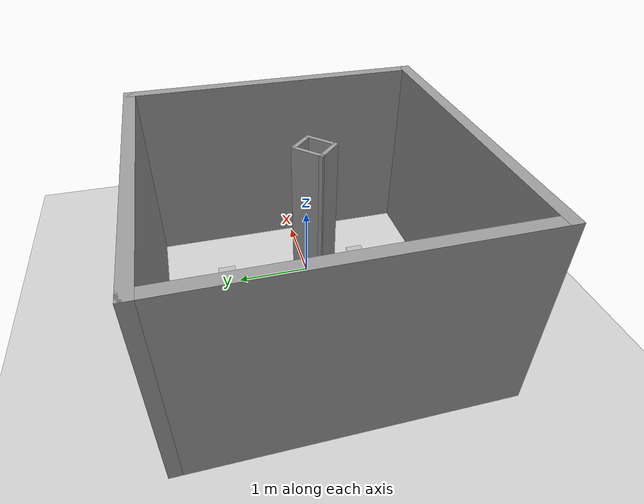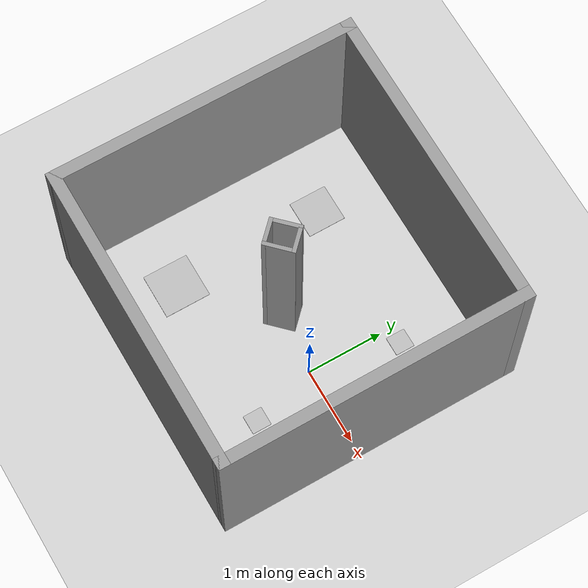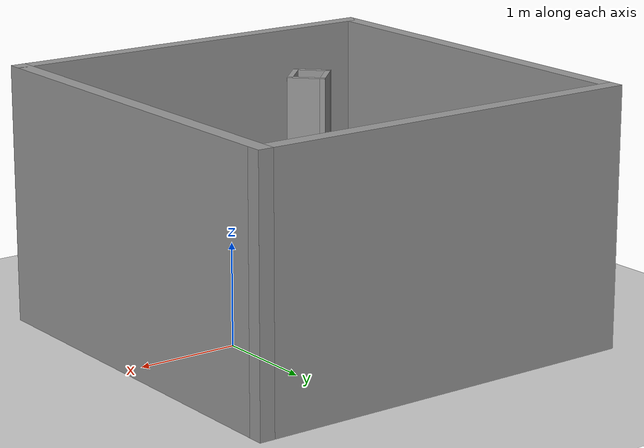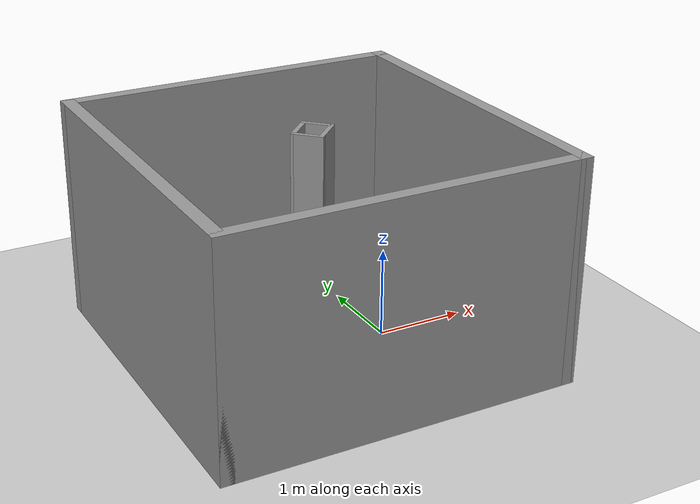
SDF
<sdf version="1.7">
 <world name="default">
  <light name="sun" type="directional">
   <pose>0 0 10 0 -0 0</pose>
   <diffuse>0.8 0.8 0.8 1</diffuse>
   <specular>0.2 0.2 0.2 1</specular>
   <attenuation>
    <range>1000</range>
    <constant>0.9</constant>
    <linear>0.01</linear>
    <quadratic>0.001</quadratic>
   </attenuation>
   <direction>-0.5 0.1 -0.9</direction>
   <spot><inner_angle>0</inner_angle><outer_angle>0</outer_angle><falloff>0</falloff></spot>
  </light>
  <model name="ground_plane">
   <static>1</static>
   <link name="link">
    <collision name="collision">
     <geometry><plane><normal>0 0 1</normal><size>100 100</size></plane></geometry>
     <surface>
      <contact><collide_bitmask>65535</collide_bitmask></contact>
      <friction><ode><mu>100</mu><mu2>50</mu2></ode></friction>
     </surface>
    </collision>
    <visual name="visual">
     <cast_shadows>0</cast_shadows>
     <geometry><plane><normal>0 0 1</normal><size>100 100</size></plane></geometry>
     <material>
      <script><uri>file://media/materials/scripts/gazebo.material</uri><name>Gazebo/Grey</name></script>
     </material>
    </visual>
   </link>
  </model>
  <gravity>0 0 -9.8</gravity>
  <magnetic_field>6e-06 2.3e-05 -4.2e-05</magnetic_field>
  <atmosphere type="adiabatic"/>
  <physics type="ode">
   <max_step_size>0.001</max_step_size>
   <real_time_factor>1</real_time_factor>
   <real_time_update_rate>1000</real_time_update_rate>
  </physics>
  <scene><ambient>0.4 0.4 0.4 1</ambient><background>0.7 0.7 0.7 1</background><shadows>1</shadows></scene>
  <spherical_coordinates>
   <surface_model>EARTH_WGS84</surface_model>
   <latitude_deg>0</latitude_deg>
   <longitude_deg>0</longitude_deg>
   <elevation>0</elevation>
   <heading_deg>0</heading_deg>
  </spherical_coordinates>
  <model name="gx">
   <pose>-0.786025 0.154635 0 0 -0 0</pose>
   <link name="Wall_0">
    <collision name="Wall_0_Collision">
     <geometry><box><size>4 0.15 2.5</size></box></geometry>
     <pose>0 0 1.25 0 -0 0</pose>
    </collision>
    <visual name="Wall_0_Visual">
     <pose>0 0 1.25 0 -0 0</pose>
     <geometry><box><size>4 0.15 2.5</size></box></geometry>
     <material>
      <script><uri>file://media/materials/scripts/gazebo.material</uri><name>Gazebo/Grey</name></script>
      <ambient>1 1 1 1</ambient>
     </material>
     <meta><layer>0</layer></meta>
    </visual>
    <pose>0 -1.925 0 0 -0 0</pose>
   </link>
   <link name="Wall_1">
    <collision name="Wall_1_Collision">
     <geometry><box><size>4 0.15 2.5</size></box></geometry>
     <pose>0 0 1.25 0 -0 0</pose>
    </collision>
    <visual name="Wall_1_Visual">
     <pose>0 0 1.25 0 -0 0</pose>
     <geometry><box><size>4 0.15 2.5</size></box></geometry>
     <material>
      <script><uri>file://media/materials/scripts/gazebo.material</uri><name>Gazebo/Grey</name></script>
      <ambient>1 1 1 1</ambient>
     </material>
     <meta><layer>0</layer></meta>
    </visual>
    <pose>1.925 0 0 0 -0 1.5708</pose>
   </link>
   <link name="Wall_10">
    <collision name="Wall_10_Collision">
     <geometry><box><size>0.35 0.05 2.5</size></box></geometry>
     <pose>0 0 1.25 0 -0 0</pose>
    </collision>
    <visual name="Wall_10_Visual">
     <pose>0 0 1.25 0 -0 0</pose>
     <geometry><box><size>0.35 0.05 2.5</size></box></geometry>
     <material>
      <script><uri>file://media/materials/scripts/gazebo.material</uri><name>Gazebo/Grey</name></script>
      <ambient>1 1 1 1</ambient>
     </material>
     <meta><layer>0</layer></meta>
    </visual>
    <pose>-0.146 -0.178 0 0 -0 -0.785398</pose>
   </link>
   <link name="Wall_13">
    <collision name="Wall_13_Collision">
     <geometry><box><size>0.400048 0.05 2.5</size></box></geometry>
     <pose>0 0 1.25 0 -0 0</pose>
    </collision>
    <visual name="Wall_13_Visual">
     <pose>0 0 1.25 0 -0 0</pose>
     <geometry><box><size>0.400048 0.05 2.5</size></box></geometry>
     <material>
      <script><uri>file://media/materials/scripts/gazebo.material</uri><name>Gazebo/Grey</name></script>
      <ambient>1 1 1 1</ambient>
     </material>
     <meta><layer>0</layer></meta>
    </visual>
    <pose>0.084 -0.16 0 0 -0 0.785398</pose>
   </link>
   <link name="Wall_2">
    <collision name="Wall_2_Collision">
     <geometry><box><size>4 0.15 2.5</size></box></geometry>
     <pose>0 0 1.25 0 -0 0</pose>
    </collision>
    <visual name="Wall_2_Visual">
     <pose>0 0 1.25 0 -0 0</pose>
     <geometry><box><size>4 0.15 2.5</size></box></geometry>
     <material>
      <script><uri>file://media/materials/scripts/gazebo.material</uri><name>Gazebo/Grey</name></script>
      <ambient>1 1 1 1</ambient>
     </material>
     <meta><layer>0</layer></meta>
    </visual>
    <pose>0 1.925 0 0 -0 3.14159</pose>
   </link>
   <link name="Wall_3">
    <collision name="Wall_3_Collision">
     <geometry><box><size>4 0.15 2.5</size></box></geometry>
     <pose>0 0 1.25 0 -0 0</pose>
    </collision>
    <visual name="Wall_3_Visual">
     <pose>0 0 1.25 0 -0 0</pose>
     <geometry><box><size>4 0.15 2.5</size></box></geometry>
     <material>
      <script><uri>file://media/materials/scripts/gazebo.material</uri><name>Gazebo/Grey</name></script>
      <ambient>1 1 1 1</ambient>
     </material>
     <meta><layer>0</layer></meta>
    </visual>
    <pose>-1.925 0 0 0 -0 -1.5708</pose>
   </link>
   <link name="Wall_6">
    <collision name="Wall_6_Collision">
     <geometry><box><size>0.400048 0.05 2.5</size></box></geometry>
     <pose>0 0 1.25 0 -0 0</pose>
    </collision>
    <visual name="Wall_6_Visual">
     <pose>0 0 1.25 0 -0 0</pose>
     <geometry><box><size>0.400048 0.05 2.5</size></box></geometry>
     <material>
      <script><uri>file://media/materials/scripts/gazebo.material</uri><name>Gazebo/Grey</name></script>
      <ambient>1 1 1 1</ambient>
     </material>
     <meta><layer>0</layer></meta>
    </visual>
    <pose>-0.1285 0.052 0 0 -0 0.787418</pose>
   </link>
   <link name="Wall_7">
    <collision name="Wall_7_Collision">
     <geometry><box><size>0.35 0.05 2.5</size></box></geometry>
     <pose>0 0 1.25 0 -0 0</pose>
    </collision>
    <visual name="Wall_7_Visual">
     <pose>0 0 1.25 0 -0 0</pose>
     <geometry><box><size>0.35 0.05 2.5</size></box></geometry>
     <material>
      <script><uri>file://media/materials/scripts/gazebo.material</uri><name>Gazebo/Grey</name></script>
      <ambient>1 1 1 1</ambient>
     </material>
     <meta><layer>0</layer></meta>
    </visual>
    <pose>0.1015 0.07 0 0 -0 -0.783045</pose>
   </link>
   <link name="link_car">
    <pose>1 1 0 0 -0 0</pose>
    <inertial>
     <mass>0.1</mass>
     <inertia><ixx>0.00058</ixx><ixy>0</ixy><ixz>0</ixz><iyy>0.00058</iyy><iyz>0</iyz><izz>0.00019</izz></inertia>
    </inertial>
    <collision name="collision"><geometry><box><size>0.25 0.25 0.01</size></box></geometry></collision>
    <visual name="visual">
     <geometry><box><size>0.25 0.25 0.01</size></box></geometry>
     <material>
      <script>
       <uri>model://gx/materials/scripts</uri>
       <uri>model://gx/materials/textures</uri>
       <name>Mark/car</name>
      </script>
     </material>
    </visual>
   </link>
   <link name="link_w">
    <pose>1 -1 0 0 -0 0</pose>
    <inertial>
     <mass>0.1</mass>
     <inertia><ixx>0.00058</ixx><ixy>0</ixy><ixz>0</ixz><iyy>0.00058</iyy><iyz>0</iyz><izz>0.00019</izz></inertia>
    </inertial>
    <collision name="collision"><geometry><box><size>0.25 0.25 0.01</size></box></geometry></collision>
    <visual name="visual">
     <geometry><box><size>0.25 0.25 0.01</size></box></geometry>
     <material>
      <script>
       <uri>model://gx/materials/scripts</uri>
       <uri>model://gx/materials/textures</uri>
       <name>Mark/w</name>
      </script>
     </material>
    </visual>
   </link>
   <link name="link_h">
    <pose>-1 -1 0 0 -0 0</pose>
    <inertial>
     <mass>0.1</mass>
     <inertia><ixx>0.00058</ixx><ixy>0</ixy><ixz>0</ixz><iyy>0.00058</iyy><iyz>0</iyz><izz>0.00019</izz></inertia>
    </inertial>
    <collision name="collision"><geometry><box><size>0.6 0.6 0.01</size></box></geometry></collision>
    <visual name="visual">
     <geometry><box><size>0.6 0.6 0.01</size></box></geometry>
     <material>
      <script>
       <uri>model://gx/materials/scripts</uri>
       <uri>model://gx/materials/textures</uri>
       <name>Mark/h</name>
      </script>
     </material>
    </visual>
   </link>
   <link name="link">
    <pose>-1 1 0 0 -0 0</pose>
    <inertial>
     <mass>0.1</mass>
     <inertia><ixx>0.00058</ixx><ixy>0</ixy><ixz>0</ixz><iyy>0.00058</iyy><iyz>0</iyz><izz>0.00019</izz></inertia>
    </inertial>
    <collision name="collision"><geometry><box><size>0.5 0.5 0.01</size></box></geometry></collision>
    <visual name="visual">
     <geometry><box><size>0.5 0.5 0.01</size></box></geometry>
     <material>
      <script>
       <uri>model://gx/materials/scripts</uri>
       <uri>model://gx/materials/textures</uri>
       <name>Mark/ring</name>
      </script>
     </material>
    </visual>
   </link>
   <static>1</static>
  </model>
 </world>
</sdf>
